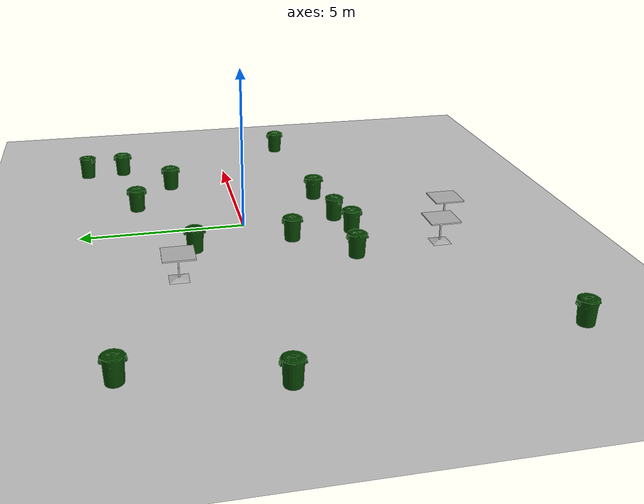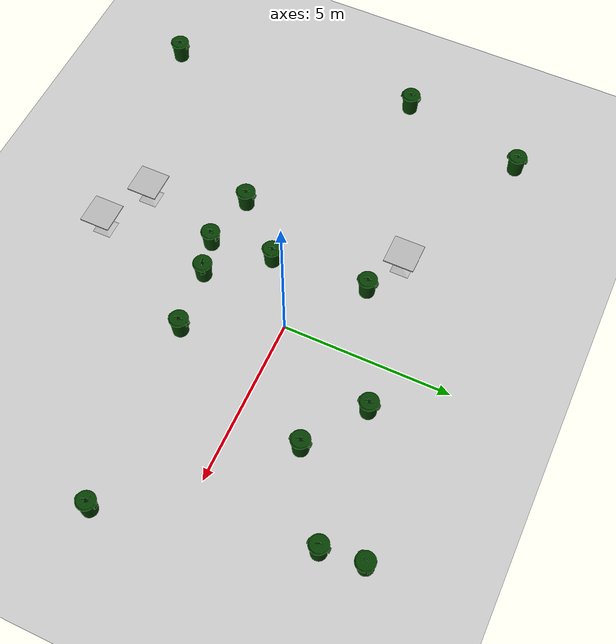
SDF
<sdf version="1.7">
 <world name="default">
  <light name="sun" type="directional">
   <pose>0 0 10 0 -0 0</pose>
   <diffuse>0.8 0.8 0.8 1</diffuse>
   <specular>0.2 0.2 0.2 1</specular>
   <attenuation>
    <range>1000</range>
    <constant>0.9</constant>
    <linear>0.01</linear>
    <quadratic>0.001</quadratic>
   </attenuation>
   <direction>-0.5 0.1 -0.9</direction>
   <spot><inner_angle>0</inner_angle><outer_angle>0</outer_angle><falloff>0</falloff></spot>
  </light>
  <model name="ground_plane">
   <static>1</static>
   <link name="link">
    <collision name="collision">
     <geometry><plane><normal>0 0 1</normal><size>100 100</size></plane></geometry>
     <surface><friction><ode><mu>100</mu><mu2>50</mu2></ode></friction></surface>
    </collision>
    <visual name="visual">
     <cast_shadows>0</cast_shadows>
     <geometry><plane><normal>0 0 1</normal><size>100 100</size></plane></geometry>
     <material>
      <script><uri>file://media/materials/scripts/gazebo.material</uri><name>Gazebo/Grey</name></script>
     </material>
    </visual>
   </link>
  </model>
  <gravity>0 0 -9.8</gravity>
  <magnetic_field>6e-06 2.3e-05 -4.2e-05</magnetic_field>
  <atmosphere type="adiabatic"/>
  <physics type="ode">
   <max_step_size>0.001</max_step_size>
   <real_time_factor>1</real_time_factor>
   <real_time_update_rate>1000</real_time_update_rate>
  </physics>
  <scene><ambient>0.4 0.4 0.4 1</ambient><background>0.7 0.7 0.7 1</background><shadows>1</shadows></scene>
  <audio><device>default</device></audio>
  <spherical_coordinates>
   <surface_model>EARTH_WGS84</surface_model>
   <latitude_deg>0</latitude_deg>
   <longitude_deg>0</longitude_deg>
   <elevation>0</elevation>
   <heading_deg>0</heading_deg>
  </spherical_coordinates>
  <model name="first_2015_trash_can">
   <link name="link">
    <inertial>
     <pose>0 0 0.3683 0 -0 0</pose>
     <mass>4.83076</mass>
     <inertia>
      <ixx>0.281534</ixx>
      <ixy>0</ixy>
      <ixz>0</ixz>
      <iyy>0.281534</iyy>
      <iyz>0</iyz>
      <izz>0.126223</izz>
     </inertia>
    </inertial>
    <visual name="visual">
     <geometry><mesh><uri>model://first_2015_trash_can/meshes/trash_can.dae</uri></mesh></geometry>
    </visual>
    <collision name="collision">
     <geometry><mesh><uri>model://first_2015_trash_can/meshes/trash_can.dae</uri></mesh></geometry>
    </collision>
   </link>
   <pose>1.49264 3.19124 0.189803 5e-06 3.5e-05 -0.00899</pose>
  </model>
  <model name="first_2015_trash_can_0">
   <link name="link">
    <inertial>
     <pose>0 0 0.3683 0 -0 0</pose>
     <mass>4.83076</mass>
     <inertia>
      <ixx>0.281534</ixx>
      <ixy>0</ixy>
      <ixz>0</ixz>
      <iyy>0.281534</iyy>
      <iyz>0</iyz>
      <izz>0.126223</izz>
     </inertia>
    </inertial>
    <visual name="visual">
     <geometry><mesh><uri>model://first_2015_trash_can/meshes/trash_can.dae</uri></mesh></geometry>
    </visual>
    <collision name="collision">
     <geometry><mesh><uri>model://first_2015_trash_can/meshes/trash_can.dae</uri></mesh></geometry>
    </collision>
   </link>
   <pose>1.39769 -2.55275 0.18979 -1.5e-05 2e-06 -0.006602</pose>
  </model>
  <model name="first_2015_trash_can_1">
   <link name="link">
    <inertial>
     <pose>0 0 0.3683 0 -0 0</pose>
     <mass>4.83076</mass>
     <inertia>
      <ixx>0.281534</ixx>
      <ixy>0</ixy>
      <ixz>0</ixz>
      <iyy>0.281534</iyy>
      <iyz>0</iyz>
      <izz>0.126223</izz>
     </inertia>
    </inertial>
    <visual name="visual">
     <geometry><mesh><uri>model://first_2015_trash_can/meshes/trash_can.dae</uri></mesh></geometry>
    </visual>
    <collision name="collision">
     <geometry><mesh><uri>model://first_2015_trash_can/meshes/trash_can.dae</uri></mesh></geometry>
    </collision>
   </link>
   <pose>-1.91735 1.69143 0.189809 6.1e-05 9e-06 -0.007694</pose>
  </model>
  <model name="first_2015_trash_can_2">
   <link name="link">
    <inertial>
     <pose>0 0 0.3683 0 -0 0</pose>
     <mass>4.83076</mass>
     <inertia>
      <ixx>0.281534</ixx>
      <ixy>0</ixy>
      <ixz>0</ixz>
      <iyy>0.281534</iyy>
      <iyz>0</iyz>
      <izz>0.126223</izz>
     </inertia>
    </inertial>
    <visual name="visual">
     <geometry><mesh><uri>model://first_2015_trash_can/meshes/trash_can.dae</uri></mesh></geometry>
    </visual>
    <collision name="collision">
     <geometry><mesh><uri>model://first_2015_trash_can/meshes/trash_can.dae</uri></mesh></geometry>
    </collision>
   </link>
   <pose>5.47054 3.54567 -3e-06 3e-06 9e-06 -0.000302</pose>
  </model>
  <model name="first_2015_trash_can_3">
   <link name="link">
    <inertial>
     <pose>0 0 0.3683 0 -0 0</pose>
     <mass>4.83076</mass>
     <inertia>
      <ixx>0.281534</ixx>
      <ixy>0</ixy>
      <ixz>0</ixz>
      <iyy>0.281534</iyy>
      <iyz>0</iyz>
      <izz>0.126223</izz>
     </inertia>
    </inertial>
    <visual name="visual">
     <geometry><mesh><uri>model://first_2015_trash_can/meshes/trash_can.dae</uri></mesh></geometry>
    </visual>
    <collision name="collision">
     <geometry><mesh><uri>model://first_2015_trash_can/meshes/trash_can.dae</uri></mesh></geometry>
    </collision>
   </link>
   <pose>-0.458444 -2.78435 0.18979 -8e-06 4e-06 -1.07194</pose>
  </model>
  <model name="first_2015_trash_can_4">
   <link name="link">
    <inertial>
     <pose>0 0 0.3683 0 -0 0</pose>
     <mass>4.83076</mass>
     <inertia>
      <ixx>0.281534</ixx>
      <ixy>0</ixy>
      <ixz>0</ixz>
      <iyy>0.281534</iyy>
      <iyz>0</iyz>
      <izz>0.126223</izz>
     </inertia>
    </inertial>
    <visual name="visual">
     <geometry><mesh><uri>model://first_2015_trash_can/meshes/trash_can.dae</uri></mesh></geometry>
    </visual>
    <collision name="collision">
     <geometry><mesh><uri>model://first_2015_trash_can/meshes/trash_can.dae</uri></mesh></geometry>
    </collision>
   </link>
   <pose>-1.49533 -3.06654 0.189798 8e-06 1e-05 -0.306431</pose>
  </model>
  <model name="first_2015_trash_can_5">
   <link name="link">
    <inertial>
     <pose>0 0 0.3683 0 -0 0</pose>
     <mass>4.83076</mass>
     <inertia>
      <ixx>0.281534</ixx>
      <ixy>0</ixy>
      <ixz>0</ixz>
      <iyy>0.281534</iyy>
      <iyz>0</iyz>
      <izz>0.126223</izz>
     </inertia>
    </inertial>
    <visual name="visual">
     <geometry><mesh><uri>model://first_2015_trash_can/meshes/trash_can.dae</uri></mesh></geometry>
    </visual>
    <collision name="collision">
     <geometry><mesh><uri>model://first_2015_trash_can/meshes/trash_can.dae</uri></mesh></geometry>
    </collision>
   </link>
   <pose>-3.18051 -2.76158 0.189799 -2e-06 1.8e-05 -0.013976</pose>
  </model>
  <model name="first_2015_trash_can_6">
   <link name="link">
    <inertial>
     <pose>0 0 0.3683 0 -0 0</pose>
     <mass>4.83076</mass>
     <inertia>
      <ixx>0.281534</ixx>
      <ixy>0</ixy>
      <ixz>0</ixz>
      <iyy>0.281534</iyy>
      <iyz>0</iyz>
      <izz>0.126223</izz>
     </inertia>
    </inertial>
    <visual name="visual">
     <geometry><mesh><uri>model://first_2015_trash_can/meshes/trash_can.dae</uri></mesh></geometry>
    </visual>
    <collision name="collision">
     <geometry><mesh><uri>model://first_2015_trash_can/meshes/trash_can.dae</uri></mesh></geometry>
    </collision>
   </link>
   <pose>-1.71263 -1.19746 0.189798 1e-05 7e-06 -0.00848</pose>
  </model>
  <model name="first_2015_trash_can_7">
   <link name="link">
    <inertial>
     <pose>0 0 0.3683 0 -0 0</pose>
     <mass>4.83076</mass>
     <inertia>
      <ixx>0.281534</ixx>
      <ixy>0</ixy>
      <ixz>0</ixz>
      <iyy>0.281534</iyy>
      <iyz>0</iyz>
      <izz>0.126223</izz>
     </inertia>
    </inertial>
    <visual name="visual">
     <geometry><mesh><uri>model://first_2015_trash_can/meshes/trash_can.dae</uri></mesh></geometry>
    </visual>
    <collision name="collision">
     <geometry><mesh><uri>model://first_2015_trash_can/meshes/trash_can.dae</uri></mesh></geometry>
    </collision>
   </link>
   <pose>3.21339 1.99256 0.189796 -5e-06 4e-06 -0.00798</pose>
  </model>
  <model name="first_2015_trash_can_8">
   <link name="link">
    <inertial>
     <pose>0 0 0.3683 0 -0 0</pose>
     <mass>4.83076</mass>
     <inertia>
      <ixx>0.281534</ixx>
      <ixy>0</ixy>
      <ixz>0</ixz>
      <iyy>0.281534</iyy>
      <iyz>0</iyz>
      <izz>0.126223</izz>
     </inertia>
    </inertial>
    <visual name="visual">
     <geometry><mesh><uri>model://first_2015_trash_can/meshes/trash_can.dae</uri></mesh></geometry>
    </visual>
    <collision name="collision">
     <geometry><mesh><uri>model://first_2015_trash_can/meshes/trash_can.dae</uri></mesh></geometry>
    </collision>
   </link>
   <pose>-7.88264 4.08363 -4e-06 3.7e-05 2.6e-05 -0.000363</pose>
  </model>
  <model name="first_2015_trash_can_9">
   <link name="link">
    <inertial>
     <pose>0 0 0.3683 0 -0 0</pose>
     <mass>4.83076</mass>
     <inertia>
      <ixx>0.281534</ixx>
      <ixy>0</ixy>
      <ixz>0</ixz>
      <iyy>0.281534</iyy>
      <iyz>0</iyz>
      <izz>0.126223</izz>
     </inertia>
    </inertial>
    <visual name="visual">
     <geometry><mesh><uri>model://first_2015_trash_can/meshes/trash_can.dae</uri></mesh></geometry>
    </visual>
    <collision name="collision">
     <geometry><mesh><uri>model://first_2015_trash_can/meshes/trash_can.dae</uri></mesh></geometry>
    </collision>
   </link>
   <pose>-8.76577 0.249763 -4e-06 0 2e-06 -0.000416</pose>
  </model>
  <model name="first_2015_trash_can_10">
   <link name="link">
    <inertial>
     <pose>0 0 0.3683 0 -0 0</pose>
     <mass>4.83076</mass>
     <inertia>
      <ixx>0.281534</ixx>
      <ixy>0</ixy>
      <ixz>0</ixz>
      <iyy>0.281534</iyy>
      <iyz>0</iyz>
      <izz>0.126223</izz>
     </inertia>
    </inertial>
    <visual name="visual">
     <geometry><mesh><uri>model://first_2015_trash_can/meshes/trash_can.dae</uri></mesh></geometry>
    </visual>
    <collision name="collision">
     <geometry><mesh><uri>model://first_2015_trash_can/meshes/trash_can.dae</uri></mesh></geometry>
    </collision>
   </link>
   <pose>-7.6674 -7.37776 -3e-06 0 1.1e-05 -0.000392</pose>
  </model>
  <model name="first_2015_trash_can_11">
   <link name="link">
    <inertial>
     <pose>0 0 0.3683 0 -0 0</pose>
     <mass>4.83076</mass>
     <inertia>
      <ixx>0.281534</ixx>
      <ixy>0</ixy>
      <ixz>0</ixz>
      <iyy>0.281534</iyy>
      <iyz>0</iyz>
      <izz>0.126223</izz>
     </inertia>
    </inertial>
    <visual name="visual">
     <geometry><mesh><uri>model://first_2015_trash_can/meshes/trash_can.dae</uri></mesh></geometry>
    </visual>
    <collision name="collision">
     <geometry><mesh><uri>model://first_2015_trash_can/meshes/trash_can.dae</uri></mesh></geometry>
    </collision>
   </link>
   <pose>6.9137 -2.28126 -2e-06 -9e-06 1e-05 -0.0003</pose>
  </model>
  <model name="first_2015_trash_can_12">
   <link name="link">
    <inertial>
     <pose>0 0 0.3683 0 -0 0</pose>
     <mass>4.83076</mass>
     <inertia>
      <ixx>0.281534</ixx>
      <ixy>0</ixy>
      <ixz>0</ixz>
      <iyy>0.281534</iyy>
      <iyz>0</iyz>
      <izz>0.126223</izz>
     </inertia>
    </inertial>
    <visual name="visual">
     <geometry><mesh><uri>model://first_2015_trash_can/meshes/trash_can.dae</uri></mesh></geometry>
    </visual>
    <collision name="collision">
     <geometry><mesh><uri>model://first_2015_trash_can/meshes/trash_can.dae</uri></mesh></geometry>
    </collision>
   </link>
   <pose>5.32432 4.77456 0.017781 -0.044523 0.069137 -0.758761</pose>
  </model>
  <model name="cafe_table">
   <static>1</static>
   <link name="link">
    <collision name="surface">
     <pose>0 0 0.755 0 -0 0</pose>
     <geometry><box><size>0.913 0.913 0.04</size></box></geometry>
    </collision>
    <collision name="column">
     <pose>0 0 0.37 0 -0 0</pose>
     <geometry><box><size>0.042 0.042 0.74</size></box></geometry>
    </collision>
    <collision name="base">
     <pose>0 0 0.02 0 -0 0</pose>
     <geometry><box><size>0.56 0.56 0.04</size></box></geometry>
    </collision>
    <visual name="visual">
     <geometry><mesh><uri>model://cafe_table/meshes/cafe_table.dae</uri></mesh></geometry>
    </visual>
   </link>
   <pose>-2.3433 -5.58168 0 0 -0 0</pose>
  </model>
  <model name="cafe_table_0">
   <static>1</static>
   <link name="link">
    <collision name="surface">
     <pose>0 0 0.755 0 -0 0</pose>
     <geometry><box><size>0.913 0.913 0.04</size></box></geometry>
    </collision>
    <collision name="column">
     <pose>0 0 0.37 0 -0 0</pose>
     <geometry><box><size>0.042 0.042 0.74</size></box></geometry>
    </collision>
    <collision name="base">
     <pose>0 0 0.02 0 -0 0</pose>
     <geometry><box><size>0.56 0.56 0.04</size></box></geometry>
    </collision>
    <visual name="visual">
     <geometry><mesh><uri>model://cafe_table/meshes/cafe_table.dae</uri></mesh></geometry>
    </visual>
   </link>
   <pose>-3.21375 2.27382 0 0 -0 0</pose>
  </model>
  <model name="cafe_table_1">
   <static>1</static>
   <link name="link">
    <collision name="surface">
     <pose>0 0 0.755 0 -0 0</pose>
     <geometry><box><size>0.913 0.913 0.04</size></box></geometry>
    </collision>
    <collision name="column">
     <pose>0 0 0.37 0 -0 0</pose>
     <geometry><box><size>0.042 0.042 0.74</size></box></geometry>
    </collision>
    <collision name="base">
     <pose>0 0 0.02 0 -0 0</pose>
     <geometry><box><size>0.56 0.56 0.04</size></box></geometry>
    </collision>
    <visual name="visual">
     <geometry><mesh><uri>model://cafe_table/meshes/cafe_table.dae</uri></mesh></geometry>
    </visual>
   </link>
   <pose>-0.821871 -6.28942 0 0 -0 0</pose>
  </model>
 </world>
</sdf>
